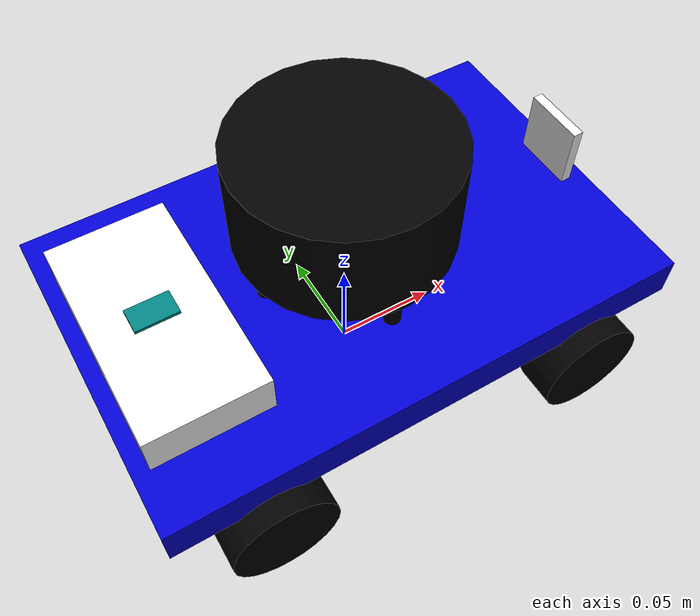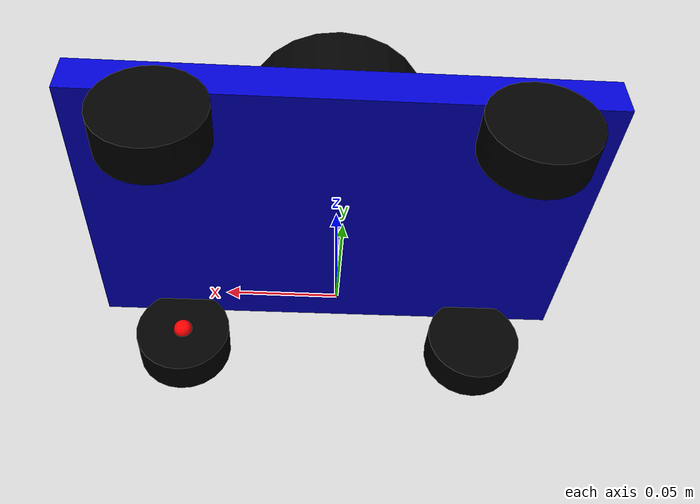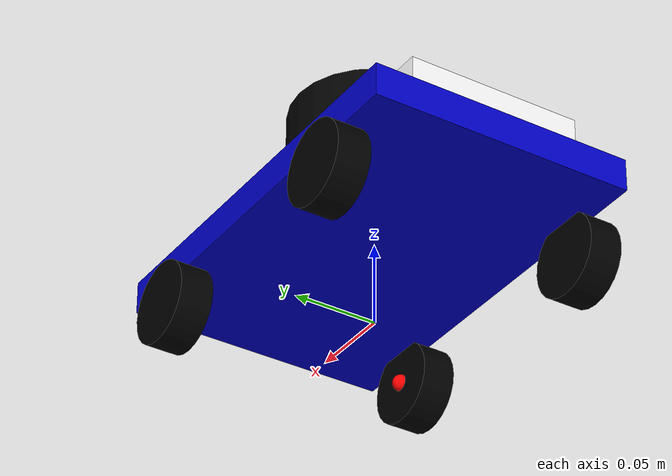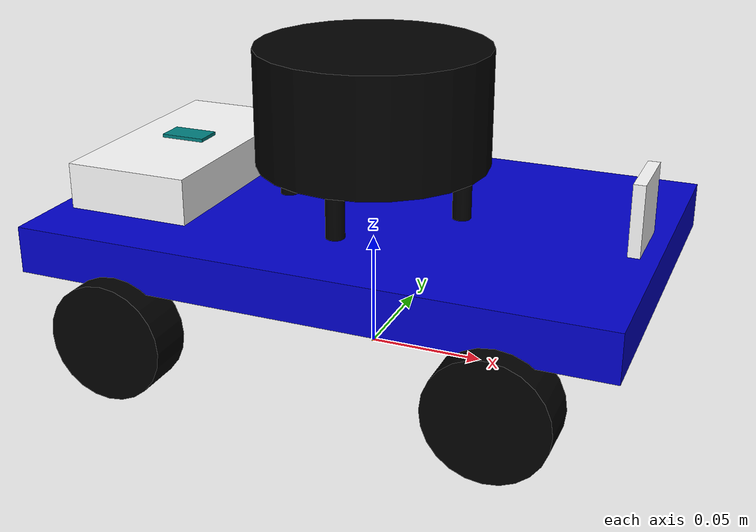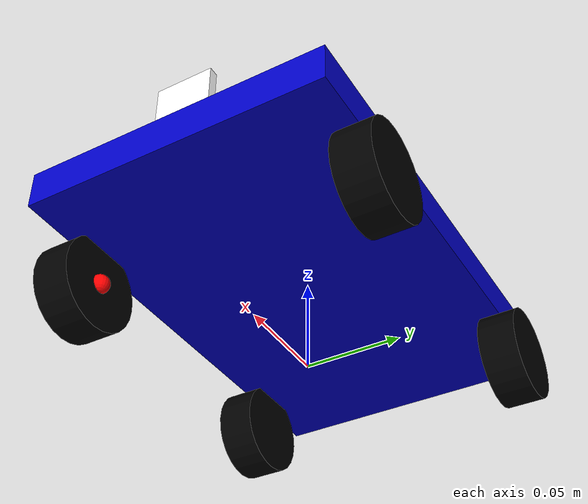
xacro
<?xml version="1.0"?>

<robot name="smartcar"
    xmlns:xi="http://www.w3.org/2001/XInclude"
    xmlns:gazebo="http://playerstage.sourceforge.net/gazebo/xmlschema/#gz"
    xmlns:model="http://playerstage.sourceforge.net/gazebo/xmlschema/#model"
    xmlns:sensor="http://playerstage.sourceforge.net/gazebo/xmlschema/#sensor"
    xmlns:body="http://playerstage.sourceforge.net/gazebo/xmlschema/#body"
    xmlns:geom="http://playerstage.sourceforge.net/gazebo/xmlschema/#geom"
    xmlns:joint="http://playerstage.sourceforge.net/gazebo/xmlschema/#joint"
    xmlns:controller="http://playerstage.sourceforge.net/gazebo/xmlschema/#controller"
    xmlns:interface="http://playerstage.sourceforge.net/gazebo/xmlschema/#interface"
    xmlns:rendering="http://playerstage.sourceforge.net/gazebo/xmlschema/#rendering"
    xmlns:renderable="http://playerstage.sourceforge.net/gazebo/xmlschema/#renderable"
    xmlns:physics="http://playerstage.sourceforge.net/gazebo/xmlschema/#physics"
    xmlns:xacro="http://ros.org/wiki/xacro">

  <xacro:include filename="$(find four_wheel_drive)/robot_model/xacro/smartcar_body.xacro" />
  <xacro:include filename="$(find four_wheel_drive)/robot_model/xacro/smartcar_sim.xacro" />

  <!-- Body of SmartCar, with plates, standoffs and Create (including sim sensors) -->
  <xacro:smartcar_body/>
  <xacro:smartcar_sim/>

</robot>

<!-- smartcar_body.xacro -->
<robot name="smartcar" xmlns:xacro="http://ros.org/wiki/xacro">
  	<xacro:property name="M_PI" value="3.14159265358"/>

  	<!-- Macro for SmartCar body. Including Gazebo extensions, but does not include Kinect -->
    <include filename="$(find four_wheel_drive)/robot_model/xacro/smartcar_sim.xacro" />

  	<xacro:macro name="smartcar_body">

	<!-- Macro for inertia matrix -->
    <xacro:macro name="cube_inertial_matrix" params="m a b c">
        <inertial>
            <mass value="${m}" />
            <inertia ixx="${m*(b*b+c*c)/12}" ixy="0" ixz="0"
                iyy="${m*(a*a+c*c)/12}" iyz="0"
                izz="${m*(a*a+b*b)/12}" />
        </inertial>
    </xacro:macro>

    <xacro:macro name="cylinder_inertial_matrix" params="m r h">
        <inertial>
            <mass value="${m}" />
            <inertia ixx="${m*(3*r*r+h*h)/12}" ixy = "0" ixz = "0"
                iyy="${m*(3*r*r+h*h)/12}" iyz = "0"
                izz="${m*r*r/2}" />
        </inertial>
    </xacro:macro>

	<link name="base_footprint">
		<visual>
			<origin xyz="0 0 0" rpy="0 0 0" />
			<geometry>
				<box size="0.001 0.001 0.001" />
			</geometry>
		</visual>
	</link>

    <joint name="base_footprint_joint" type="fixed">
        <origin xyz="0 0 0" rpy="0 0 0" />
        <parent link="base_footprint"/>
        <child link="base_link" />
    </joint>

	<link name="base_link">
		<xacro:cube_inertial_matrix m="10.0" a="0.25" b="0.16" c="0.02"/>
    	<visual>
    		<origin xyz="0 0 0.055" rpy="0 0 0" />
      		<geometry>
        		<box size="0.25 0.16 0.02"/>
      		</geometry>
      		<material name="blue">
      			<color rgba="0 0 0.8 1"/>
      		</material>
   		</visual>
   		<collision>
   			<origin xyz="0 0 0.055" rpy="0 0 0" />
      		<geometry>
        		<box size="0.25 0.16 0.02" />
      		</geometry>
    	</collision>
  	</link>

	<link name="left_front_wheel">
		<xacro:cylinder_inertial_matrix m="5" r="0.025" h="0.02"/>
		<visual>
			<origin rpy="0 0 0" xyz="0 0 0"/>
			<geometry>
				<cylinder length=".02" radius="0.025"/>
			</geometry>
			<material name="black">
				<color rgba="0 0 0 1"/>
			</material>
		</visual>
		<collision>
			<origin rpy="0 0 0" xyz="0 0 0"/>
			<geometry>
				<cylinder length=".02" radius="0.025"/>
			</geometry>
		</collision>
	</link>
	<link name="right_front_wheel">
		<xacro:cylinder_inertial_matrix m="5" r="0.025" h="0.02"/>
		<visual>
			<origin rpy="0 0 0" xyz="0 0 0"/>
			<geometry>
				<cylinder length=".02" radius="0.025"/>
			</geometry>
			<material name="black">
				<color rgba="0 0 0 1"/>
		  	</material>
		</visual>
		<collision>
			<origin rpy="0 0 0" xyz="0 0 0"/>
		  	<geometry>
		  		<cylinder length=".02" radius="0.025"/>
		  	</geometry>
		</collision>
	</link>
	<link name="left_back_wheel">
		<xacro:cylinder_inertial_matrix m="5" r="0.025" h="0.02"/>
		<visual>
			<origin rpy="0 0 0" xyz="0 0 0"/>
			<geometry>
				<cylinder length=".02" radius="0.025"/>
			</geometry>
		  	<material name="black">
		    	<color rgba="0 0 0 1"/>
		  	</material>
		</visual>
		<collision>
			<origin rpy="0 0 0" xyz="0 0 0"/>
		  	<geometry>
				<cylinder length=".02" radius="0.025"/>
			</geometry>
		</collision>
	</link>

	<joint name="left_back_wheel_joint" type="continuous">
		<axis xyz="0 0 1"/>
		<parent link="base_link"/>
		<child link="left_back_wheel"/>
		<origin rpy="0 ${M_PI/2} ${M_PI/2}" xyz="-0.08 0.08 0.025"/>
		<dynamics damping="0.0"/>
		<limit effort="100" velocity="100"/>
		<joint_properties damping="0.0" friction="0.0"/>
	</joint>

	<link name="right_back_wheel">
		<xacro:cylinder_inertial_matrix m="5.0" r="0.025" h="0.02"/>
		<visual>
			<origin rpy="0 0 0" xyz="0 0 0"/>
			<geometry>
		    	<cylinder length=".02" radius="0.025"/>
		  	</geometry>
		  	<material name="black">
		    	<color rgba="0 0 0 1"/>
		  	</material>
		</visual>
		<collision>
			<origin rpy="0 0 0" xyz="0 0 0"/>
		  	<geometry>
				<cylinder length=".02" radius="0.025"/>
		  	</geometry>
		</collision>
	</link>

	<joint name="right_back_wheel_joint" type="continuous">
		<axis xyz="0 0 1"/>
		<parent link="base_link"/>
		<child link="right_back_wheel"/>
		<origin rpy="0 ${M_PI/2} ${M_PI/2}" xyz="-0.08 -0.08 0.025"/>
		<dynamics damping="0.0"/>
		<limit effort="100" velocity="100"/>
		<joint_properties damping="0.0" friction="0.0"/>
	</joint>

	<link name="left_bridge">
  		<inertial>
        	<origin rpy="0 0 0" xyz="0 0 0"/>
            <mass value="0.3" />
            <inertia ixx="${2*0.3*0.005*0.005/5}" ixy="0" ixz="0" iyy="${2*0.3*0.005*0.005/5}" iyz="0" izz="${2*0.3*0.005*0.005/5}" />
        </inertial>
        <visual>
        	<origin rpy="0 0 0" xyz="0 0 0"/>
            <geometry>
                <sphere radius="0.005" />
            </geometry>
            <material name="red">
        		<color rgba="1 0 0 1"/>
      		</material>
        </visual>
        <collision>
        	<origin rpy="0 0 0" xyz="0 0 0"/>
            <geometry>
                <sphere radius="0.005" />
            </geometry>
        </collision>
    </link>

  	<joint name="left_bridge_to_bridge" type="revolute">
		<parent link="base_link"/>
        <child link="left_bridge"/>
        <origin rpy="0 0 ${M_PI/2}" xyz="0.08 -0.07 0.025"/>
        <axis xyz="0 0 -1" />
        <dynamics damping="0.0"/>
        <limit effort="2.5" velocity="10" lower="-0.785" upper="0.785" />
        <joint_properties damping="20.0" friction="20.0"/>
    </joint>

  	<link name="right_bridge">
        <inertial>
        	<origin rpy="0 0 0" xyz="0 0 0"/>
            <mass value="0.3" />
            <inertia ixx="${2*0.3*0.005*0.005/5}" ixy="0" ixz="0" iyy="${2*0.3*0.005*0.005/5}" iyz="0" izz="${2*0.3*0.005*0.005/5}" />
        </inertial>
        <visual>
        	<origin rpy="0 0 0" xyz="0 0 0"/>
            <geometry>
                <sphere radius="0.005" />
            </geometry>
            <material name="red">
        		<color rgba="1 0 0 1"/>
      		</material>
        </visual>
        <collision>
        	<origin rpy="0 0 0" xyz="0 0 0"/>
            <geometry>
                <sphere radius="0.005" />
            </geometry>
        </collision>
    </link>

  	<joint name="right_bridge_to_bridge" type="revolute">
		<parent link="base_link"/>
        <child link="right_bridge"/>
        <origin rpy="0 0 ${M_PI/2}" xyz="0.08 0.07 0.025"/>
        <axis xyz="0 0 -1" />
        <dynamics damping="0.0"/>
        <limit effort="2.5" velocity="10" lower="-0.785" upper="0.785" />
        <joint_properties damping="20.0" friction="20.0"/>
    </joint>

  	<joint name="right_front_wheel_to_bridge" type="continuous">
  		<axis xyz="0 0 1"/>
		<parent link="right_bridge"/>
        <child link="right_front_wheel"/>
        <origin rpy="0 ${M_PI/2} 0" xyz="0.01 0 0"/>
        <dynamics damping="0.0"/>
        <limit effort="100" velocity="100"/>
    	<joint_properties damping="0.0" friction="0.0"/>
    </joint>

  	<joint name="left_front_wheel_to_bridge" type="continuous">
  		<axis xyz="0 0 1"/>
		<parent link="left_bridge"/>
        <child link="left_front_wheel"/>
        <origin rpy="0 ${M_PI/2} 0" xyz="-0.01 0 0"/>
        <dynamics damping="0.0"/>
        <limit effort="100" velocity="100"/>
    	<joint_properties damping="0.0" friction="0.0"/>
    </joint>

  	<link name="camera_link">
    	<inertial>
		  	<origin rpy="0 0 0" xyz="0 0 0"/>
		  	<mass value="0.1" />
		  	<inertia ixx="${0.1*(0.03*0.03+0.03*0.03)/12}" ixy="0.0" ixz="0.0" iyy="${0.1*(0.03*0.03+0.005*0.005)/12}" iyz="0.0" izz="${0.1*(0.03*0.03+0.005*0.005)/12}"/>
		</inertial>
    	<visual>
    		<origin rpy="0 0 0" xyz="0 0 0"/>
      		<geometry>
        		<box size=".005 .03 .03"/>
      		</geometry>
      		<material name="white">
        		<color rgba="1 1 1 1"/>
      		</material>
     	</visual>
     	<collision>
      		<origin rpy="0 0 0" xyz="0 0 0"/>
      		<geometry>
         		<box size=".005 .03 .03"/>
      		</geometry>
    	</collision>
  	</link>

  	<joint name="tobox" type="fixed">
    	<parent link="base_link"/>
    	<child link="camera_link"/>
    	<origin rpy="0 0 0" xyz="0.115 0 0.08"/>
  	</joint>

  	<joint name="carriage_front_joint" type="fixed">
        <origin xyz="0.04 0 0.075" rpy="0 0 0"/>
        <parent link="base_link"/>
        <child link="carriage_front"/>
    </joint>

  	<link name="carriage_front">
		<visual>
			<origin xyz="0 0 0" rpy="0 0 0" />
			<geometry>
				<cylinder length="0.025" radius="0.004"/>
			</geometry>
			<material name="black">
        		<color rgba="0 0 0 1"/>
      		</material>
		</visual>
		<collision>
      		<origin xyz="0 0 0" rpy="0 0 0" />
      		<geometry>
         		<cylinder length="0.025" radius="0.004"/>
      		</geometry>
    	</collision>
    	<xacro:cylinder_inertial_matrix  m="0.02" r="0.004" h="0.025" />
	</link>

	<joint name="carriage_left_joint" type="fixed">
        <origin xyz="0 -0.04 0.075" rpy="0 0 0"/>
        <parent link="base_link"/>
        <child link="carriage_left"/>
    </joint>

	<link name="carriage_left">
		<visual>
			<origin xyz=" 0 0 0 " rpy="0 0 0" />
			<geometry>
				<cylinder length="0.025" radius="0.004"/>
			</geometry>
			<material name="black">
        		<color rgba="0 0 0 1"/>
      		</material>
		</visual>
		<collision>
      		<origin xyz="0 0 0" rpy="0 0 0" />
      		<geometry>
         		<cylinder length="0.025" radius="0.004"/>
      		</geometry>
    	</collision>
    	<xacro:cylinder_inertial_matrix  m="0.02" r="0.004" h="0.025" />
	</link>

	<joint name="carriage_right_joint" type="fixed">
        <origin xyz="0 0.04 0.075" rpy="0 0 0"/>
        <parent link="base_link"/>
        <child link="carriage_right"/>
    </joint>

	<link name="carriage_right">
		<visual>
			<origin xyz="0 0 0" rpy="0 0 0" />
			<geometry>
				<cylinder length="0.025" radius="0.004"/>
			</geometry>
			<material name="black">
        		<color rgba="0 0 0 1"/>
      		</material>
		</visual>
		<collision>
      		<origin xyz=" 0 0 0 " rpy="0 0 0" />
      		<geometry>
         		<cylinder length="0.025" radius="0.004"/>
      		</geometry>
    	</collision>
    	<xacro:cylinder_inertial_matrix  m="0.02" r="0.004" h="0.025" />
	</link>

	<joint name="carriage_back_joint" type="fixed">
        <origin xyz="-0.04 0 0.075" rpy="0 0 0"/>
        <parent link="base_link"/>
        <child link="carriage_back"/>
    </joint>

	<link name="carriage_back">
		<visual>
			<origin xyz="0 0 0" rpy="0 0 0" />
			<geometry>
				<cylinder length="0.025" radius="0.004"/>
			</geometry>
			<material name="black">
        		<color rgba="0 0 0 1"/>
      		</material>
		</visual>
		<collision>
      		<origin xyz="0 0 0" rpy="0 0 0" />
      		<geometry>
         		<cylinder length="0.025" radius="0.004"/>
      		</geometry>
    	</collision>
    	<xacro:cylinder_inertial_matrix  m="0.02" r="0.004" h="0.025" />
	</link>

	<link name="laser_link">
		<visual>
			<origin xyz="0 0 0" rpy="0 0 0" />
			<geometry>
				<cylinder length="0.05" radius="0.05"/>
			</geometry>
			<material name="black">
        		<color rgba="0 0 0 1"/>
      		</material>
		</visual>
		<collision>
      		<origin xyz="0 0 0" rpy="0 0 0" />
      		<geometry>
         		<cylinder length="0.05" radius="0.05"/>
      		</geometry>
    	</collision>
    	<xacro:cylinder_inertial_matrix  m="0.17" r="0.05" h="0.05" />
	</link>

    <joint name="laser_joint" type="fixed">
        <origin xyz="0 0 0.11" rpy="0 0 0"/>
        <parent link="base_link"/>
        <child link="laser_link"/>
    </joint>

    <link name="Raspberry_Pi">
    	<inertial>
		  	<origin rpy="0 0 0" xyz="0 0 0"/>
		  	<mass value="0.1" />
		  	<inertia ixx="${0.1*(.105*.105+0.02*0.02)/12}" ixy="0.0" ixz="0.0" iyy="${0.1*(.055*.055+0.02*0.02)/12}" iyz="0.0" izz="${0.1*(.105*.105+.02*.02)/12}"/>
		</inertial>
    	<visual>
    		<origin rpy="0 0 0" xyz="0 0 0"/>
      		<geometry>
        		<box size=".055 .105 .02"/>
      		</geometry>
      		<material name="white">
        		<color rgba="1 1 1 1"/>
      		</material>
     	</visual>
     	<collision>
      		<origin rpy="0 0 0" xyz="0 0 0"/>
      		<geometry>
         		<box size=".055 .105 .02"/>
      		</geometry>
    	</collision>
  	</link>

  	<joint name="Raspberry_Pi_joint" type="fixed">
    	<parent link="base_link"/>
    	<child link="Raspberry_Pi"/>
    	<origin xyz="-0.09 0 0.075"/>
  	</joint>

	<link name="imu_link">
		<inertial>
		  	<origin rpy="0 0 0" xyz="0 0 0"/>
		  	<mass value="0.04" />
		  	<inertia ixx="${0.04*(.02*.02+.003*.003)/12}" ixy="0.0" ixz="0.0" iyy="${0.04*(.012*.012+.003*.003)/12}" iyz="0.0" izz="${0.04*(.02*.02+.012*.012)/12}"/>
		</inertial>
		<visual>
			<geometry>
        		<box size=".02 .012 .003"/>
      		</geometry>
			<material name="yellow">
        		<color rgba="0 0.5 0.5 1"/>
      		</material>
        </visual>
		<collision>
			<origin rpy="0 0 0" xyz="0 0 0"/>
			<geometry>
        		<box size=".02 .012 .003"/>
      		</geometry>
		</collision>
	</link>

	<joint name="imu_joint" type="fixed">
    	<parent link="Raspberry_Pi"/>
    	<child link="imu_link"/>
    	<origin xyz="0 0 0.01"/>
  	</joint>

	</xacro:macro>

</robot>
